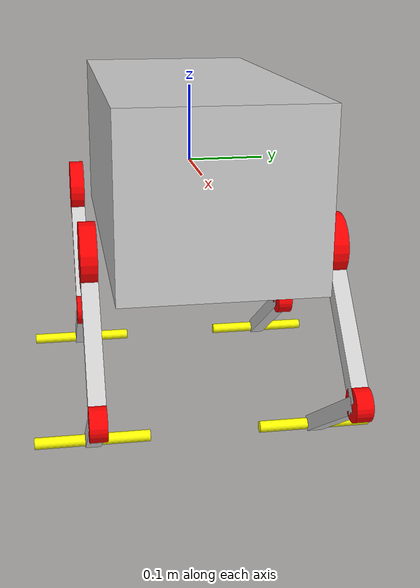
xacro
<?xml version="1.0"?>
<robot name="mr2" xmlns:xacro="http://ros.org/wiki/xacro">
    <xacro:include filename="$(find mr2_ros)/urdf/common.xacro"/>

    <link name="base_link">
        <visual>
            <geometry>
                <box size="0.52 0.246 0.22" />
            </geometry>
            <origin rpy="0 0 0" xyz="0 0 0"/>
            <material name="gray"/>
        </visual>
        <collision>
            <geometry>
                <box size="0.52 0.246 0.22" />
            </geometry>
        </collision>
        <inertial>
            <mass value="0.1"/>
            <inertia ixx="0.001" ixy="0" ixz="0" iyy="0.001" iyz="0" izz="0.001"/>
        </inertial>
    </link>

    <xacro:macro name="leg_base" params="prefix">
        <link name="${prefix}_base_link">
            <visual>
                <geometry>
                    <cylinder radius="0.04" length="0.02"/>
                </geometry>
                <origin xyz="0 0 0" rpy="${pi/2} 0 0"/>
                <material name="red"/>
            </visual>
            <inertial>
                <mass value="1"/>
                <inertia ixx="1" ixy="0" ixz="0" iyy="1" iyz="0" izz="1"/>
            </inertial>
        </link>
    </xacro:macro>

    <joint name="leg1_joint" type="fixed">
        <parent link="base_link"/>
        <child  link="leg1_base_link"/>
        <origin xyz="0.1725 -0.1484 -0.075" rpy="0 0 0"/>
    </joint>
    <xacro:leg_base prefix="leg1"/>

    <joint name="leg2_joint" type="fixed">
        <parent link="base_link"/>
        <child  link="leg2_base_link"/>
        <origin xyz="0.1725 0.1484 -0.075" rpy="0 0 0"/>
    </joint>
    <xacro:leg_base prefix="leg2"/>

    <joint name="leg3_joint" type="fixed">
        <parent link="base_link"/>
        <child  link="leg3_base_link"/>
        <origin xyz="-0.1725 -0.1484 -0.075" rpy="0 0 0"/>
    </joint>
    <xacro:leg_base prefix="leg3"/>

    <joint name="leg4_joint" type="fixed">
        <parent link="base_link"/>
        <child  link="leg4_base_link"/>
        <origin xyz="-0.1725 0.1484 -0.075" rpy="0 0 0"/>
    </joint>
    <xacro:leg_base prefix="leg4"/>

    <xacro:macro name="leg" params="prefix parent">
        <link name="${prefix}_top_link">
            <visual>
                <geometry>
                    <box size="0.02 0.02 0.20" />
                </geometry>
                <material name="gray"/>
                <origin rpy="0 0 0" xyz="0.0 0.0 0.10"/>
            </visual>
            <collision>
                <geometry>
                    <box size="0.02 0.02 0.02" />
                </geometry>
            </collision>
            <inertial>
                <mass value="0.5"/>
                <inertia ixx="0.001" ixy="0" ixz="0" iyy="0.001" iyz="0" izz="0.001"/>
            </inertial>
        </link>
        <joint name="${prefix}_top_joint" type="fixed">
            <parent link="${parent}"/>
            <child link="${prefix}_top_link"/>
            <origin rpy="0 ${-pi*221/180} 0" xyz="0 0 0"/>
            <axis xyz="0 -1 0" />
            <dynamics damping="0.4"/>
        </joint>

        <link name="${prefix}_bottom_base_link">
            <visual>
                <geometry>
                    <cylinder radius="0.02" length="0.02"/>
                </geometry>
                <origin xyz="0 0 0" rpy="${pi/2} 0 0"/>
                <material name="red"/>
            </visual>
            <inertial>
                <mass value="0.1"/>
                <inertia ixx="1" ixy="0" ixz="0" iyy="1" iyz="0" izz="1"/>
            </inertial>
        </link>
        <joint name="${prefix}_bottom_base_joint" type="fixed">
            <parent link="${prefix}_top_link"/>
            <child  link="${prefix}_bottom_base_link"/>
            <origin xyz="0.0 0.0 0.2" rpy="0 0 0"/>
        </joint>

        <link name="${prefix}_bottom_link">
            <visual>
                <geometry>
                    <box size="0.02 0.02 0.20" />
                </geometry>
                <material name="gray"/>
                <origin rpy="0 0 0" xyz="0.0 0.0 0.10"/>
            </visual>
            <collision>
                <geometry>
                    <box size="0.02 0.02 0.02" />
                </geometry>
            </collision>
            <inertial>
                <mass value="0.5"/>
                <inertia ixx="0.001" ixy="0" ixz="0" iyy="0.001" iyz="0" izz="0.001"/>
            </inertial>
        </link>
        <joint name="${prefix}_bottom_joint" type="fixed">
            <parent link="${prefix}_bottom_base_link"/>
            <child link="${prefix}_bottom_link"/>
            <origin rpy="0 ${pi*97/180} 0" xyz="0 0 0"/>
            <axis xyz="0 1 0" />
            <dynamics damping="0.4"/>
        </joint>

        <link name="${prefix}_foot_link">
            <visual>
                <geometry>
                    <cylinder radius="0.0075" length="0.15"/>
                </geometry>
                <material name="yellow"/>
                <origin rpy="${pi/2} 0 0" xyz="0.0 0.0 0.0"/>
            </visual>
            <collision>
                <geometry>
                    <cylinder radius="0.0075" length="0.015"/>
                </geometry>
            </collision>
            <inertial>
                <mass value="0.1"/>
                <inertia ixx="0.001" ixy="0" ixz="0" iyy="0.001" iyz="0" izz="0.001"/>
            </inertial>
        </link>
        <joint name="${prefix}_foot_joint" type="fixed">
            <parent link="${prefix}_bottom_link"/>
            <child  link="${prefix}_foot_link"/>
            <origin xyz="0.0 0.0 0.2" rpy="0 0 0"/>
        </joint>

        <!-- ===============  Transmission =============== -->
        <transmission name="${prefix}_top_trans">
            <type>transmission_interface/SimpleTransmission</type>
            <joint name="${prefix}_top_joint">
                <hardwareInterface>hardware_interface/EffortJointInterface</hardwareInterface>
            </joint>
            <actuator name="${prefix}_top_motor">
                <hardwareInterface>hardware_interface/EffortJointInterface</hardwareInterface>
                <mechanicalReduction>100</mechanicalReduction>
            </actuator>
        </transmission>
        <transmission name="${prefix}_bottom_trans">
            <type>transmission_interface/SimpleTransmission</type>
            <joint name="${prefix}_bottom_joint">
                <hardwareInterface>hardware_interface/EffortJointInterface</hardwareInterface>
            </joint>
            <actuator name="${prefix}_bottom_motor">
                <hardwareInterface>hardware_interface/EffortJointInterface</hardwareInterface>
                <mechanicalReduction>100</mechanicalReduction>
            </actuator>
        </transmission>

        <!-- ==================  Gazebo ================== -->
        <gazebo reference="${prefix}_top_joint">
            <implicitSpringDamper>1</implicitSpringDamper>
        </gazebo>
        <gazebo reference="${prefix}_bottom_joint">
            <implicitSpringDamper>1</implicitSpringDamper>
        </gazebo>

        <gazebo reference="${prefix}_foot_link">
            <mu1 value="1.0" />
            <mu2 value="1.0" />
            <kp value="100000" />
            <kd value="1000" />
            <material>Gazebo/Black</material>
        </gazebo>
    </xacro:macro>

    <xacro:leg prefix="leg1" parent="leg1_base_link" />
    <xacro:leg prefix="leg2" parent="leg2_base_link" />
    <xacro:leg prefix="leg3" parent="leg3_base_link" />
    <xacro:leg prefix="leg4" parent="leg4_base_link" />

    <gazebo>
        <plugin name="gazebo_ros_control" filename="libgazebo_ros_control.so">
            <robotNamespace>/mr2</robotNamespace>
        </plugin>
    </gazebo>

</robot>

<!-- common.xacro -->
<robot xmlns:xacro="http://ros.org/wiki/xacro">
  <xacro:macro name="pi" params="3.1415926535897931" />

  <material name="gray">
    <color rgba="0.8 0.8 0.8 1.0"/>
  </material>
  <material name="black">
    <color rgba="0 0 0 2.5"/>
  </material>
  <material name="white">
    <color rgba="1.0 1.0 1.0 2.5"/>
  </material>
  <material name="red">
    <color rgba="1.0 0 0 2.5"/>
  </material>
  <material name="green">
    <color rgba="0 1.0 0 2.5"/>
  </material>
  <material name="light_red">
    <color rgba="1.0 0.5 0.5 2.5"/>
  </material>
  <material name="yellow">
    <color rgba="1.0 1.0 0.0 2.5"/>
  </material>
</robot>
